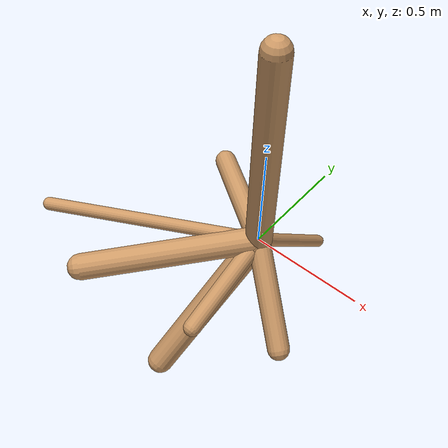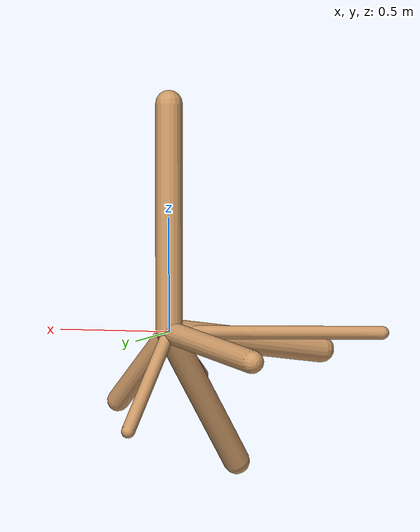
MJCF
<!--
                    joint_number: 7
                    -->
                    <mujoco model="randomrobot">
                        <compiler angle="degree" coordinate="global" inertiafromgeom="true"/>
                        <default>
                        <joint armature="0.01" damping=".1" limited="true"/>
                        <geom conaffinity="0" condim="3" contype="1" density="1000" friction="0.8 .1 .1" rgba="0.8 0.6 .4 1"/>
                        </default>
                        <option integrator="RK4" timestep="0.002"/>
                        <worldbody>
                    <body name='torso' pos='0.00 0.00 0.97'><geom fromto='0 0 0 0.00 0.00 1.00' name='torso_geom' size='0.06' type='capsule'/><inertial mass='0.3'/><body name='L0_D1' pos='0.00 0.00 0.87'><joint axis='1 0 0' name='L0_D1_joint' pos='0 0 0' range='78.77 100.12' type='hinge'/><geom fromto='0 0 0 -0.02 -0.42 -0.23' name='L0_D1_geom' size='0.04' type='capsule'/><inertial mass='0.3'/><body name='L1_D0' pos='-0.02 -0.32 -0.17'><joint axis='0 1 0' name='L1_D0_joint' pos='0 0 0' range='46.19 163.28' type='hinge'/><geom fromto='0 0 0 -0.18 -0.47 -0.62' name='L1_D0_geom' size='0.06' type='capsule'/><inertial mass='0.3'/></body></body><body name='L2_D1' pos='0.00 0.00 0.52'><joint axis='0 1 0' name='L2_D1_joint' pos='0 0 0' range='82.09 120.53' type='hinge'/><geom fromto='0 0 0 -0.86 -0.44 -0.02' name='L2_D1_geom' size='0.03' type='capsule'/><inertial mass='0.3'/><body name='L3_D0' pos='-0.62 -0.31 -0.01'><joint axis='0 0 1' name='L3_D0_joint' pos='0 0 0' range='55.67 94.37' type='hinge'/><geom fromto='0 0 0 -0.47 0.35 -0.09' name='L3_D0_geom' size='0.05' type='capsule'/><inertial mass='0.3'/></body><body name='L4_D0' pos='-0.73 -0.37 -0.01'><joint axis='0 1 0' name='L4_D0_joint' pos='0 0 0' range='38.80 47.76' type='hinge'/><geom fromto='0 0 0 -0.55 -0.56 -0.11' name='L4_D0_geom' size='0.06' type='capsule'/><inertial mass='0.3'/></body></body><body name='L5_D1' pos='0.00 0.00 0.45'><joint axis='1 0 0' name='L5_D1_joint' pos='0 0 0' range='90.25 175.29' type='hinge'/><geom fromto='0 0 0 0.30 -0.21 -0.33' name='L5_D1_geom' size='0.05' type='capsule'/><inertial mass='0.3'/></body><body name='L6_D1' pos='0.00 0.00 0.02'><joint axis='0 1 0' name='L6_D1_joint' pos='0 0 0' range='97.11 172.86' type='hinge'/><geom fromto='0 0 0 0.05 0.45 -0.39' name='L6_D1_geom' size='0.03' type='capsule'/><inertial mass='0.3'/></body></body>
                        </worldbody>
                    </mujoco>
